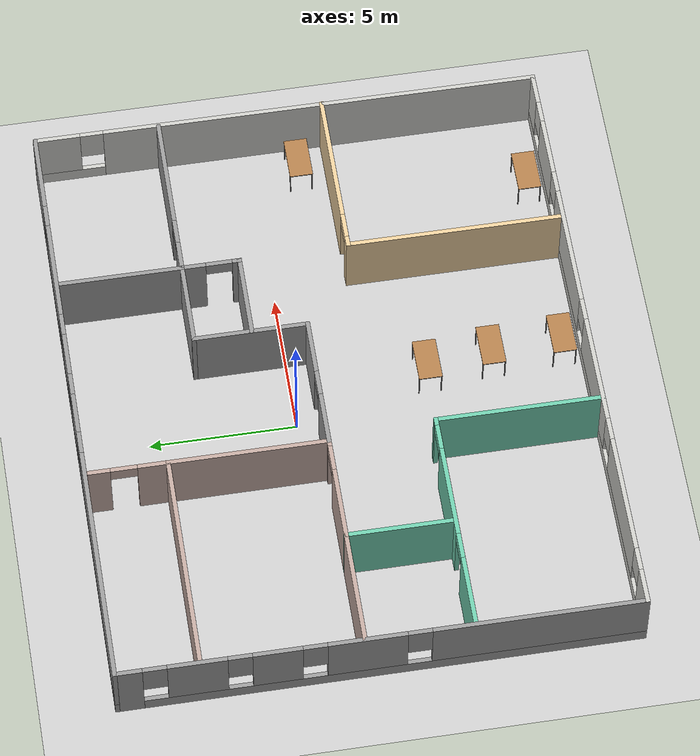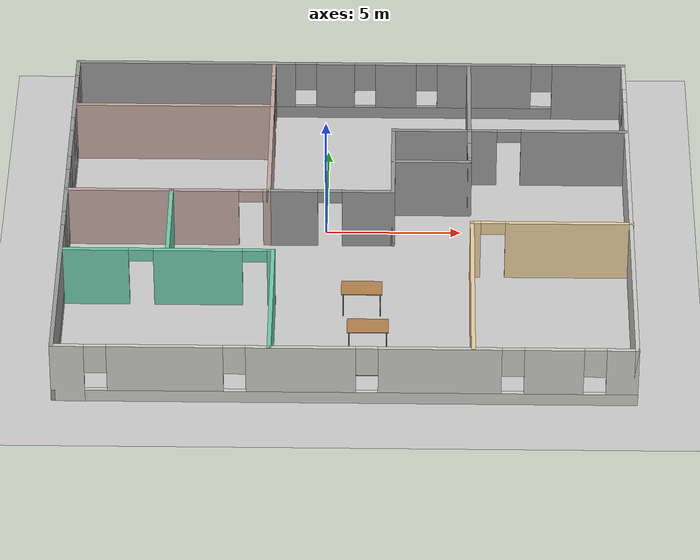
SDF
<sdf version="1.6">
 <world name="default">
  <model name="ground_plane">
   <static>1</static>
   <link name="link">
    <collision name="collision">
     <geometry><plane><normal>0 0 1</normal><size>100 100</size></plane></geometry>
     <surface>
      <contact><collide_bitmask>65535</collide_bitmask></contact>
      <friction><ode><mu>100</mu><mu2>50</mu2></ode></friction>
     </surface>
    </collision>
    <visual name="visual">
     <cast_shadows>0</cast_shadows>
     <geometry><plane><normal>0 0 1</normal><size>100 100</size></plane></geometry>
     <material>
      <script><uri>file://media/materials/scripts/gazebo.material</uri><name>Gazebo/Grey</name></script>
     </material>
    </visual>
   </link>
  </model>
  <model name="Building">
   <pose>0.811073 -1.31925 0 0 -0 0</pose>
   <link name="Wall_1">
    <pose>-10.4348 0 0 0 0 -1.5708</pose>
    <visual name="Wall_1_Visual_0">
     <pose>-8.26713 0 1.25 0 -0 0</pose>
     <geometry><box><size>0.965742 0.15 2.5</size></box></geometry>
     <material>
      <script><uri>file://media/materials/scripts/gazebo.material</uri><name>Gazebo/Grey</name></script>
      <ambient>1 1 1 1</ambient>
     </material>
     <meta><layer>0</layer></meta>
    </visual>
    <collision name="Wall_1_Collision_0">
     <geometry><box><size>0.965742 0.15 2.5</size></box></geometry>
     <pose>-8.26713 0 1.25 0 -0 0</pose>
    </collision>
    <visual name="Wall_1_Visual_1">
     <pose>0.482871 0 0.25 0 -0 0</pose>
     <geometry><box><size>16.5343 0.15 0.5</size></box></geometry>
     <material>
      <script><uri>file://media/materials/scripts/gazebo.material</uri><name>Gazebo/Grey</name></script>
      <ambient>1 1 1 1</ambient>
     </material>
     <meta><layer>0</layer></meta>
    </visual>
    <collision name="Wall_1_Collision_1">
     <geometry><box><size>16.5343 0.15 0.5</size></box></geometry>
     <pose>0.482871 0 0.25 0 -0 0</pose>
    </collision>
    <visual name="Wall_1_Visual_2">
     <pose>-6.00096 0 1.5 0 -0 0</pose>
     <geometry><box><size>1.9666 0.15 2</size></box></geometry>
     <material>
      <script><uri>file://media/materials/scripts/gazebo.material</uri><name>Gazebo/Grey</name></script>
      <ambient>1 1 1 1</ambient>
     </material>
     <meta><layer>0</layer></meta>
    </visual>
    <collision name="Wall_1_Collision_2">
     <geometry><box><size>1.9666 0.15 2</size></box></geometry>
     <pose>-6.00096 0 1.5 0 -0 0</pose>
    </collision>
    <visual name="Wall_1_Visual_3">
     <pose>-3.3971 0 1.5 0 -0 0</pose>
     <geometry><box><size>1.64112 0.15 2</size></box></geometry>
     <material>
      <script><uri>file://media/materials/scripts/gazebo.material</uri><name>Gazebo/Grey</name></script>
      <ambient>1 1 1 1</ambient>
     </material>
     <meta><layer>0</layer></meta>
    </visual>
    <collision name="Wall_1_Collision_3">
     <geometry><box><size>1.64112 0.15 2</size></box></geometry>
     <pose>-3.3971 0 1.5 0 -0 0</pose>
    </collision>
    <visual name="Wall_1_Visual_4">
     <pose>-0.467756 0 1.5 0 -0 0</pose>
     <geometry><box><size>2.61757 0.15 2</size></box></geometry>
     <material>
      <script><uri>file://media/materials/scripts/gazebo.material</uri><name>Gazebo/Grey</name></script>
      <ambient>1 1 1 1</ambient>
     </material>
     <meta><layer>0</layer></meta>
    </visual>
    <collision name="Wall_1_Collision_4">
     <geometry><box><size>2.61757 0.15 2</size></box></geometry>
     <pose>-0.467756 0 1.5 0 -0 0</pose>
    </collision>
    <visual name="Wall_1_Visual_5">
     <pose>5.19551 0 1.5 0 -0 0</pose>
     <geometry><box><size>7.10897 0.15 2</size></box></geometry>
     <material>
      <script><uri>file://media/materials/scripts/gazebo.material</uri><name>Gazebo/Grey</name></script>
      <ambient>1 1 1 1</ambient>
     </material>
     <meta><layer>0</layer></meta>
    </visual>
    <collision name="Wall_1_Collision_5">
     <geometry><box><size>7.10897 0.15 2</size></box></geometry>
     <pose>5.19551 0 1.5 0 -0 0</pose>
    </collision>
    <visual name="Wall_1_Visual_6">
     <pose>-7.38426 0 1.9 0 -0 0</pose>
     <geometry><box><size>0.8 0.15 1.2</size></box></geometry>
     <material>
      <script><uri>file://media/materials/scripts/gazebo.material</uri><name>Gazebo/Grey</name></script>
      <ambient>1 1 1 1</ambient>
     </material>
     <meta><layer>0</layer></meta>
    </visual>
    <collision name="Wall_1_Collision_6">
     <geometry><box><size>0.8 0.15 1.2</size></box></geometry>
     <pose>-7.38426 0 1.9 0 -0 0</pose>
    </collision>
    <visual name="Wall_1_Visual_7">
     <pose>-4.61766 0 1.9 0 -0 0</pose>
     <geometry><box><size>0.8 0.15 1.2</size></box></geometry>
     <material>
      <script><uri>file://media/materials/scripts/gazebo.material</uri><name>Gazebo/Grey</name></script>
      <ambient>1 1 1 1</ambient>
     </material>
     <meta><layer>0</layer></meta>
    </visual>
    <collision name="Wall_1_Collision_7">
     <geometry><box><size>0.8 0.15 1.2</size></box></geometry>
     <pose>-4.61766 0 1.9 0 -0 0</pose>
    </collision>
    <visual name="Wall_1_Visual_8">
     <pose>-2.17654 0 1.9 0 -0 0</pose>
     <geometry><box><size>0.8 0.15 1.2</size></box></geometry>
     <material>
      <script><uri>file://media/materials/scripts/gazebo.material</uri><name>Gazebo/Grey</name></script>
      <ambient>1 1 1 1</ambient>
     </material>
     <meta><layer>0</layer></meta>
    </visual>
    <collision name="Wall_1_Collision_8">
     <geometry><box><size>0.8 0.15 1.2</size></box></geometry>
     <pose>-2.17654 0 1.9 0 -0 0</pose>
    </collision>
    <visual name="Wall_1_Visual_9">
     <pose>1.24103 0 1.9 0 -0 0</pose>
     <geometry><box><size>0.8 0.15 1.2</size></box></geometry>
     <material>
      <script><uri>file://media/materials/scripts/gazebo.material</uri><name>Gazebo/Grey</name></script>
      <ambient>1 1 1 1</ambient>
     </material>
     <meta><layer>0</layer></meta>
    </visual>
    <collision name="Wall_1_Collision_9">
     <geometry><box><size>0.8 0.15 1.2</size></box></geometry>
     <pose>1.24103 0 1.9 0 -0 0</pose>
    </collision>
   </link>
   <link name="Wall_10">
    <collision name="Wall_10_Collision">
     <geometry><box><size>4 0.15 2.5</size></box></geometry>
     <pose>0 0 1.25 0 -0 0</pose>
    </collision>
    <visual name="Wall_10_Visual">
     <pose>0 0 1.25 0 -0 0</pose>
     <geometry><box><size>4 0.15 2.5</size></box></geometry>
     <material>
      <script><uri>file://media/materials/scripts/gazebo.material</uri><name>Gazebo/Grey</name></script>
      <ambient>0.760784 0.662745 0.627451 1</ambient>
     </material>
     <meta><layer>0</layer></meta>
    </visual>
    <pose>-8.46331 0.559038 0 0 -0 3.14159</pose>
   </link>
   <link name="Wall_12">
    <pose>-4.73832 0.559038 0 0 -0 0</pose>
    <visual name="Wall_12_Visual_0">
     <pose>-0.592728 0 1.25 0 -0 0</pose>
     <geometry><box><size>2.56454 0.15 2.5</size></box></geometry>
     <material>
      <script><uri>file://media/materials/scripts/gazebo.material</uri><name>Gazebo/Grey</name></script>
      <ambient>0.760784 0.662745 0.627451 1</ambient>
     </material>
     <meta><layer>0</layer></meta>
    </visual>
    <collision name="Wall_12_Collision_0">
     <geometry><box><size>2.56454 0.15 2.5</size></box></geometry>
     <pose>-0.592728 0 1.25 0 -0 0</pose>
    </collision>
    <visual name="Wall_12_Visual_1">
     <pose>1.73227 0 1.25 0 -0 0</pose>
     <geometry><box><size>0.285456 0.15 2.5</size></box></geometry>
     <material>
      <script><uri>file://media/materials/scripts/gazebo.material</uri><name>Gazebo/Grey</name></script>
      <ambient>0.760784 0.662745 0.627451 1</ambient>
     </material>
     <meta><layer>0</layer></meta>
    </visual>
    <collision name="Wall_12_Collision_1">
     <geometry><box><size>0.285456 0.15 2.5</size></box></geometry>
     <pose>1.73227 0 1.25 0 -0 0</pose>
    </collision>
    <visual name="Wall_12_Visual_2">
     <pose>1.13954 0 2.25 0 -0 0</pose>
     <geometry><box><size>0.9 0.15 0.5</size></box></geometry>
     <material>
      <script><uri>file://media/materials/scripts/gazebo.material</uri><name>Gazebo/Grey</name></script>
      <ambient>0.760784 0.662745 0.627451 1</ambient>
     </material>
     <meta><layer>0</layer></meta>
    </visual>
    <collision name="Wall_12_Collision_2">
     <geometry><box><size>0.9 0.15 0.5</size></box></geometry>
     <pose>1.13954 0 2.25 0 -0 0</pose>
    </collision>
   </link>
   <link name="Wall_13">
    <collision name="Wall_13_Collision">
     <geometry><box><size>5.5 0.15 2.5</size></box></geometry>
     <pose>0 0 1.25 0 -0 0</pose>
    </collision>
    <visual name="Wall_13_Visual">
     <pose>0 0 1.25 0 -0 0</pose>
     <geometry><box><size>5.5 0.15 2.5</size></box></geometry>
     <material>
      <script><uri>file://media/materials/scripts/gazebo.material</uri><name>Gazebo/Grey</name></script>
      <ambient>0.760784 0.662745 0.627451 1</ambient>
     </material>
     <meta><layer>0</layer></meta>
    </visual>
    <pose>-2.93835 3.23415 0 0 -0 1.57081</pose>
   </link>
   <link name="Wall_14">
    <collision name="Wall_14_Collision">
     <geometry><box><size>7.5 0.15 2.5</size></box></geometry>
     <pose>0 0 1.25 0 -0 0</pose>
    </collision>
    <visual name="Wall_14_Visual">
     <pose>0 0 1.25 0 -0 0</pose>
     <geometry><box><size>7.5 0.15 2.5</size></box></geometry>
     <material>
      <script><uri>file://media/materials/scripts/gazebo.material</uri><name>Gazebo/Grey</name></script>
      <ambient>0.760784 0.662745 0.627451 1</ambient>
     </material>
     <meta><layer>0</layer></meta>
    </visual>
    <pose>-6.61335 5.90915 0 0 0 -3.14156</pose>
   </link>
   <link name="Wall_16">
    <pose>-2.93838 7.21526 0 0 -0 1.5708</pose>
    <visual name="Wall_16_Visual_0">
     <pose>-0.831001 0 1.25 0 -0 0</pose>
     <geometry><box><size>1.1 0.15 2.5</size></box></geometry>
     <material>
      <script><uri>file://media/materials/scripts/gazebo.material</uri><name>Gazebo/Grey</name></script>
      <ambient>0.760784 0.662745 0.627451 1</ambient>
     </material>
     <meta><layer>0</layer></meta>
    </visual>
    <collision name="Wall_16_Collision_0">
     <geometry><box><size>1.1 0.15 2.5</size></box></geometry>
     <pose>-0.831001 0 1.25 0 -0 0</pose>
    </collision>
    <visual name="Wall_16_Visual_1">
     <pose>0.999999 0 1.25 0 -0 0</pose>
     <geometry><box><size>0.762002 0.15 2.5</size></box></geometry>
     <material>
      <script><uri>file://media/materials/scripts/gazebo.material</uri><name>Gazebo/Grey</name></script>
      <ambient>0.760784 0.662745 0.627451 1</ambient>
     </material>
     <meta><layer>0</layer></meta>
    </visual>
    <collision name="Wall_16_Collision_1">
     <geometry><box><size>0.762002 0.15 2.5</size></box></geometry>
     <pose>0.999999 0 1.25 0 -0 0</pose>
    </collision>
    <visual name="Wall_16_Visual_2">
     <pose>0.168998 0 2.25 0 -0 0</pose>
     <geometry><box><size>0.9 0.15 0.5</size></box></geometry>
     <material>
      <script><uri>file://media/materials/scripts/gazebo.material</uri><name>Gazebo/Grey</name></script>
      <ambient>0.760784 0.662745 0.627451 1</ambient>
     </material>
     <meta><layer>0</layer></meta>
    </visual>
    <collision name="Wall_16_Collision_2">
     <geometry><box><size>0.9 0.15 0.5</size></box></geometry>
     <pose>0.168998 0 2.25 0 -0 0</pose>
    </collision>
   </link>
   <link name="Wall_18">
    <collision name="Wall_18_Collision">
     <geometry><box><size>7.5 0.15 2.5</size></box></geometry>
     <pose>0 0 1.25 0 -0 0</pose>
    </collision>
    <visual name="Wall_18_Visual">
     <pose>0 0 1.25 0 -0 0</pose>
     <geometry><box><size>7.5 0.15 2.5</size></box></geometry>
     <material>
      <script><uri>file://media/materials/scripts/gazebo.material</uri><name>Gazebo/Grey</name></script>
      <ambient>0.921569 0.807843 0.615686 1</ambient>
     </material>
     <meta><layer>0</layer></meta>
    </visual>
    <pose>4.58481 -4.95144 0 0 -0 1.5708</pose>
   </link>
   <link name="Wall_19">
    <pose>7.50981 -1.27643 0 0 -0 0</pose>
    <visual name="Wall_19_Visual_0">
     <pose>-2.8039 0 1.25 0 -0 0</pose>
     <geometry><box><size>0.39219 0.15 2.5</size></box></geometry>
     <material>
      <script><uri>file://media/materials/scripts/gazebo.material</uri><name>Gazebo/Grey</name></script>
      <ambient>0.921569 0.807843 0.615686 1</ambient>
     </material>
     <meta><layer>0</layer></meta>
    </visual>
    <collision name="Wall_19_Collision_0">
     <geometry><box><size>0.39219 0.15 2.5</size></box></geometry>
     <pose>-2.8039 0 1.25 0 -0 0</pose>
    </collision>
    <visual name="Wall_19_Visual_1">
     <pose>0.646095 0 1.25 0 -0 0</pose>
     <geometry><box><size>4.70781 0.15 2.5</size></box></geometry>
     <material>
      <script><uri>file://media/materials/scripts/gazebo.material</uri><name>Gazebo/Grey</name></script>
      <ambient>0.921569 0.807843 0.615686 1</ambient>
     </material>
     <meta><layer>0</layer></meta>
    </visual>
    <collision name="Wall_19_Collision_1">
     <geometry><box><size>4.70781 0.15 2.5</size></box></geometry>
     <pose>0.646095 0 1.25 0 -0 0</pose>
    </collision>
    <visual name="Wall_19_Visual_2">
     <pose>-2.15781 0 2.25 0 -0 0</pose>
     <geometry><box><size>0.9 0.15 0.5</size></box></geometry>
     <material>
      <script><uri>file://media/materials/scripts/gazebo.material</uri><name>Gazebo/Grey</name></script>
      <ambient>0.921569 0.807843 0.615686 1</ambient>
     </material>
     <meta><layer>0</layer></meta>
    </visual>
    <collision name="Wall_19_Collision_2">
     <geometry><box><size>0.9 0.15 0.5</size></box></geometry>
     <pose>-2.15781 0 2.25 0 -0 0</pose>
    </collision>
   </link>
   <link name="Wall_2">
    <pose>-0.009806 -8.675 0 0 -0 0</pose>
    <visual name="Wall_2_Visual_0">
     <pose>-9.88903 0 1.25 0 -0 0</pose>
     <geometry><box><size>1.22195 0.15 2.5</size></box></geometry>
     <material>
      <script><uri>file://media/materials/scripts/gazebo.material</uri><name>Gazebo/CeilingTiled</name></script>
      <ambient>1 1 1 1</ambient>
     </material>
     <meta><layer>0</layer></meta>
    </visual>
    <collision name="Wall_2_Collision_0">
     <geometry><box><size>1.22195 0.15 2.5</size></box></geometry>
     <pose>-9.88903 0 1.25 0 -0 0</pose>
    </collision>
    <visual name="Wall_2_Visual_1">
     <pose>0.610973 0 0.25 0 -0 0</pose>
     <geometry><box><size>19.7781 0.15 0.5</size></box></geometry>
     <material>
      <script><uri>file://media/materials/scripts/gazebo.material</uri><name>Gazebo/CeilingTiled</name></script>
      <ambient>1 1 1 1</ambient>
     </material>
     <meta><layer>0</layer></meta>
    </visual>
    <collision name="Wall_2_Collision_1">
     <geometry><box><size>19.7781 0.15 0.5</size></box></geometry>
     <pose>0.610973 0 0.25 0 -0 0</pose>
    </collision>
    <visual name="Wall_2_Visual_2">
     <pose>-6.39625 0 1.5 0 -0 0</pose>
     <geometry><box><size>4.16361 0.15 2</size></box></geometry>
     <material>
      <script><uri>file://media/materials/scripts/gazebo.material</uri><name>Gazebo/CeilingTiled</name></script>
      <ambient>1 1 1 1</ambient>
     </material>
     <meta><layer>0</layer></meta>
    </visual>
    <collision name="Wall_2_Collision_2">
     <geometry><box><size>4.16361 0.15 2</size></box></geometry>
     <pose>-6.39625 0 1.5 0 -0 0</pose>
    </collision>
    <visual name="Wall_2_Visual_3">
     <pose>-1.5547 0 1.5 0 -0 0</pose>
     <geometry><box><size>3.9195 0.15 2</size></box></geometry>
     <material>
      <script><uri>file://media/materials/scripts/gazebo.material</uri><name>Gazebo/CeilingTiled</name></script>
      <ambient>1 1 1 1</ambient>
     </material>
     <meta><layer>0</layer></meta>
    </visual>
    <collision name="Wall_2_Collision_3">
     <geometry><box><size>3.9195 0.15 2</size></box></geometry>
     <pose>-1.5547 0 1.5 0 -0 0</pose>
    </collision>
    <visual name="Wall_2_Visual_4">
     <pose>3.40891 0 1.5 0 -0 0</pose>
     <geometry><box><size>4.40772 0.15 2</size></box></geometry>
     <material>
      <script><uri>file://media/materials/scripts/gazebo.material</uri><name>Gazebo/CeilingTiled</name></script>
      <ambient>1 1 1 1</ambient>
     </material>
     <meta><layer>0</layer></meta>
    </visual>
    <collision name="Wall_2_Collision_4">
     <geometry><box><size>4.40772 0.15 2</size></box></geometry>
     <pose>3.40891 0 1.5 0 -0 0</pose>
    </collision>
    <visual name="Wall_2_Visual_5">
     <pose>7.47744 0 1.5 0 -0 0</pose>
     <geometry><box><size>2.12934 0.15 2</size></box></geometry>
     <material>
      <script><uri>file://media/materials/scripts/gazebo.material</uri><name>Gazebo/CeilingTiled</name></script>
      <ambient>1 1 1 1</ambient>
     </material>
     <meta><layer>0</layer></meta>
    </visual>
    <collision name="Wall_2_Collision_5">
     <geometry><box><size>2.12934 0.15 2</size></box></geometry>
     <pose>7.47744 0 1.5 0 -0 0</pose>
    </collision>
    <visual name="Wall_2_Visual_6">
     <pose>9.92106 0 1.5 0 -0 0</pose>
     <geometry><box><size>1.15789 0.15 2</size></box></geometry>
     <material>
      <script><uri>file://media/materials/scripts/gazebo.material</uri><name>Gazebo/CeilingTiled</name></script>
      <ambient>1 1 1 1</ambient>
     </material>
     <meta><layer>0</layer></meta>
    </visual>
    <collision name="Wall_2_Collision_6">
     <geometry><box><size>1.15789 0.15 2</size></box></geometry>
     <pose>9.92106 0 1.5 0 -0 0</pose>
    </collision>
    <visual name="Wall_2_Visual_7">
     <pose>-8.87805 0 1.9 0 -0 0</pose>
     <geometry><box><size>0.8 0.15 1.2</size></box></geometry>
     <material>
      <script><uri>file://media/materials/scripts/gazebo.material</uri><name>Gazebo/CeilingTiled</name></script>
      <ambient>1 1 1 1</ambient>
     </material>
     <meta><layer>0</layer></meta>
    </visual>
    <collision name="Wall_2_Collision_7">
     <geometry><box><size>0.8 0.15 1.2</size></box></geometry>
     <pose>-8.87805 0 1.9 0 -0 0</pose>
    </collision>
    <visual name="Wall_2_Visual_8">
     <pose>-3.91445 0 1.9 0 -0 0</pose>
     <geometry><box><size>0.8 0.15 1.2</size></box></geometry>
     <material>
      <script><uri>file://media/materials/scripts/gazebo.material</uri><name>Gazebo/CeilingTiled</name></script>
      <ambient>1 1 1 1</ambient>
     </material>
     <meta><layer>0</layer></meta>
    </visual>
    <collision name="Wall_2_Collision_8">
     <geometry><box><size>0.8 0.15 1.2</size></box></geometry>
     <pose>-3.91445 0 1.9 0 -0 0</pose>
    </collision>
    <visual name="Wall_2_Visual_9">
     <pose>0.805049 0 1.9 0 -0 0</pose>
     <geometry><box><size>0.8 0.15 1.2</size></box></geometry>
     <material>
      <script><uri>file://media/materials/scripts/gazebo.material</uri><name>Gazebo/CeilingTiled</name></script>
      <ambient>1 1 1 1</ambient>
     </material>
     <meta><layer>0</layer></meta>
    </visual>
    <collision name="Wall_2_Collision_9">
     <geometry><box><size>0.8 0.15 1.2</size></box></geometry>
     <pose>0.805049 0 1.9 0 -0 0</pose>
    </collision>
    <visual name="Wall_2_Visual_10">
     <pose>6.01277 0 1.9 0 -0 0</pose>
     <geometry><box><size>0.8 0.15 1.2</size></box></geometry>
     <material>
      <script><uri>file://media/materials/scripts/gazebo.material</uri><name>Gazebo/CeilingTiled</name></script>
      <ambient>1 1 1 1</ambient>
     </material>
     <meta><layer>0</layer></meta>
    </visual>
    <collision name="Wall_2_Collision_10">
     <geometry><box><size>0.8 0.15 1.2</size></box></geometry>
     <pose>6.01277 0 1.9 0 -0 0</pose>
    </collision>
    <visual name="Wall_2_Visual_11">
     <pose>8.94211 0 1.9 0 -0 0</pose>
     <geometry><box><size>0.8 0.15 1.2</size></box></geometry>
     <material>
      <script><uri>file://media/materials/scripts/gazebo.material</uri><name>Gazebo/CeilingTiled</name></script>
      <ambient>1 1 1 1</ambient>
     </material>
     <meta><layer>0</layer></meta>
    </visual>
    <collision name="Wall_2_Collision_11">
     <geometry><box><size>0.8 0.15 1.2</size></box></geometry>
     <pose>8.94211 0 1.9 0 -0 0</pose>
    </collision>
   </link>
   <link name="Wall_21">
    <pose>-0.638315 0.559038 0 0 -0 0</pose>
    <visual name="Wall_21_Visual_0">
     <pose>-1.42806 0 1.25 0 -0 0</pose>
     <geometry><box><size>1.89389 0.15 2.5</size></box></geometry>
     <material>
      <script><uri>file://media/materials/scripts/gazebo.material</uri><name>Gazebo/Grey</name></script>
      <ambient>1 1 1 1</ambient>
     </material>
     <meta><layer>0</layer></meta>
    </visual>
    <collision name="Wall_21_Collision_0">
     <geometry><box><size>1.89389 0.15 2.5</size></box></geometry>
     <pose>-1.42806 0 1.25 0 -0 0</pose>
    </collision>
    <visual name="Wall_21_Visual_1">
     <pose>1.39694 0 1.25 0 -0 0</pose>
     <geometry><box><size>1.95611 0.15 2.5</size></box></geometry>
     <material>
      <script><uri>file://media/materials/scripts/gazebo.material</uri><name>Gazebo/Grey</name></script>
      <ambient>1 1 1 1</ambient>
     </material>
     <meta><layer>0</layer></meta>
    </visual>
    <collision name="Wall_21_Collision_1">
     <geometry><box><size>1.95611 0.15 2.5</size></box></geometry>
     <pose>1.39694 0 1.25 0 -0 0</pose>
    </collision>
    <visual name="Wall_21_Visual_2">
     <pose>-0.031114 0 2.25 0 -0 0</pose>
     <geometry><box><size>0.9 0.15 0.5</size></box></geometry>
     <material>
      <script><uri>file://media/materials/scripts/gazebo.material</uri><name>Gazebo/Grey</name></script>
      <ambient>1 1 1 1</ambient>
     </material>
     <meta><layer>0</layer></meta>
    </visual>
    <collision name="Wall_21_Collision_2">
     <geometry><box><size>0.9 0.15 0.5</size></box></geometry>
     <pose>-0.031114 0 2.25 0 -0 0</pose>
    </collision>
   </link>
   <link name="Wall_22">
    <collision name="Wall_22_Collision">
     <geometry><box><size>4 0.15 2.5</size></box></geometry>
     <pose>0 0 1.25 0 -0 0</pose>
    </collision>
    <visual name="Wall_22_Visual">
     <pose>0 0 1.25 0 -0 0</pose>
     <geometry><box><size>4 0.15 2.5</size></box></geometry>
     <material>
      <script><uri>file://media/materials/scripts/gazebo.material</uri><name>Gazebo/Grey</name></script>
      <ambient>1 1 1 1</ambient>
     </material>
     <meta><layer>0</layer></meta>
    </visual>
    <pose>1.66169 2.48404 0 0 -0 1.5708</pose>
   </link>
   <link name="Wall_23">
    <collision name="Wall_23_Collision">
     <geometry><box><size>3 0.15 2.5</size></box></geometry>
     <pose>0 0 1.25 0 -0 0</pose>
    </collision>
    <visual name="Wall_23_Visual">
     <pose>0 0 1.25 0 -0 0</pose>
     <geometry><box><size>3 0.15 2.5</size></box></geometry>
     <material>
      <script><uri>file://media/materials/scripts/gazebo.material</uri><name>Gazebo/Grey</name></script>
      <ambient>1 1 1 1</ambient>
     </material>
     <meta><layer>0</layer></meta>
    </visual>
    <pose>3.08665 4.40915 0 0 -0 7.8e-05</pose>
   </link>
   <link name="Wall_24">
    <collision name="Wall_24_Collision">
     <geometry><box><size>4.268 0.15 2.5</size></box></geometry>
     <pose>0 0 1.25 0 -0 0</pose>
    </collision>
    <visual name="Wall_24_Visual">
     <pose>0 0 1.25 0 -0 0</pose>
     <geometry><box><size>4.268 0.15 2.5</size></box></geometry>
     <material>
      <script><uri>file://media/materials/scripts/gazebo.material</uri><name>Gazebo/Grey</name></script>
      <ambient>0 0 0 1</ambient>
     </material>
     <meta><layer>0</layer></meta>
    </visual>
    <pose>4.51162 6.46826 0 0 -0 1.5708</pose>
   </link>
   <link name="Wall_29">
    <collision name="Wall_29_Collision">
     <geometry><box><size>3 0.15 2.5</size></box></geometry>
     <pose>0 0 1.25 0 -0 0</pose>
    </collision>
    <visual name="Wall_29_Visual">
     <pose>0 0 1.25 0 -0 0</pose>
     <geometry><box><size>3 0.15 2.5</size></box></geometry>
     <material>
      <script><uri>file://media/materials/scripts/gazebo.material</uri><name>Gazebo/Grey</name></script>
      <ambient>1 1 1 1</ambient>
     </material>
     <meta><layer>0</layer></meta>
    </visual>
    <pose>3.09 2.4505 0 0 -0 0</pose>
   </link>
   <link name="Wall_3">
    <pose>10.4152 0 0 0 -0 1.5708</pose>
    <visual name="Wall_3_Visual_0">
     <pose>-1.20835 0 1.25 0 -0 0</pose>
     <geometry><box><size>15.0833 0.15 2.5</size></box></geometry>
     <material>
      <script><uri>file://media/materials/scripts/gazebo.material</uri><name>Gazebo/CeilingTiled</name></script>
      <ambient>1 1 1 1</ambient>
     </material>
     <meta><layer>0</layer></meta>
    </visual>
    <collision name="Wall_3_Collision_0">
     <geometry><box><size>15.0833 0.15 2.5</size></box></geometry>
     <pose>-1.20835 0 1.25 0 -0 0</pose>
    </collision>
    <visual name="Wall_3_Visual_1">
     <pose>7.54165 0 0.25 0 -0 0</pose>
     <geometry><box><size>2.41671 0.15 0.5</size></box></geometry>
     <material>
      <script><uri>file://media/materials/scripts/gazebo.material</uri><name>Gazebo/CeilingTiled</name></script>
      <ambient>1 1 1 1</ambient>
     </material>
     <meta><layer>0</layer></meta>
    </visual>
    <collision name="Wall_3_Collision_1">
     <geometry><box><size>2.41671 0.15 0.5</size></box></geometry>
     <pose>7.54165 0 0.25 0 -0 0</pose>
    </collision>
    <visual name="Wall_3_Visual_2">
     <pose>7.94165 0 1.5 0 -0 0</pose>
     <geometry><box><size>1.61671 0.15 2</size></box></geometry>
     <material>
      <script><uri>file://media/materials/scripts/gazebo.material</uri><name>Gazebo/CeilingTiled</name></script>
      <ambient>1 1 1 1</ambient>
     </material>
     <meta><layer>0</layer></meta>
    </visual>
    <collision name="Wall_3_Collision_2">
     <geometry><box><size>1.61671 0.15 2</size></box></geometry>
     <pose>7.94165 0 1.5 0 -0 0</pose>
    </collision>
    <visual name="Wall_3_Visual_3">
     <pose>6.73329 0 1.9 0 -0 0</pose>
     <geometry><box><size>0.8 0.15 1.2</size></box></geometry>
     <material>
      <script><uri>file://media/materials/scripts/gazebo.material</uri><name>Gazebo/CeilingTiled</name></script>
      <ambient>1 1 1 1</ambient>
     </material>
     <meta><layer>0</layer></meta>
    </visual>
    <collision name="Wall_3_Collision_3">
     <geometry><box><size>0.8 0.15 1.2</size></box></geometry>
     <pose>6.73329 0 1.9 0 -0 0</pose>
    </collision>
   </link>
   <link name="Wall_30">
    <pose>4.51331 3.42988 0 0 -0 1.57252</pose>
    <visual name="Wall_30_Visual_0">
     <pose>-0.890603 0 1.25 0 -0 0</pose>
     <geometry><box><size>0.327334 0.15 2.5</size></box></geometry>
     <material>
      <script><uri>file://media/materials/scripts/gazebo.material</uri><name>Gazebo/Grey</name></script>
      <ambient>1 1 1 1</ambient>
     </material>
     <meta><layer>0</layer></meta>
    </visual>
    <collision name="Wall_30_Collision_0">
     <geometry><box><size>0.327334 0.15 2.5</size></box></geometry>
     <pose>-0.890603 0 1.25 0 -0 0</pose>
    </collision>
    <visual name="Wall_30_Visual_1">
     <pose>0.613667 0 1.25 0 -0 0</pose>
     <geometry><box><size>0.881207 0.15 2.5</size></box></geometry>
     <material>
      <script><uri>file://media/materials/scripts/gazebo.material</uri><name>Gazebo/Grey</name></script>
      <ambient>1 1 1 1</ambient>
     </material>
     <meta><layer>0</layer></meta>
    </visual>
    <collision name="Wall_30_Collision_1">
     <geometry><box><size>0.881207 0.15 2.5</size></box></geometry>
     <pose>0.613667 0 1.25 0 -0 0</pose>
    </collision>
    <visual name="Wall_30_Visual_2">
     <pose>-0.276937 0 2.25 0 -0 0</pose>
     <geometry><box><size>0.9 0.15 0.5</size></box></geometry>
     <material>
      <script><uri>file://media/materials/scripts/gazebo.material</uri><name>Gazebo/Grey</name></script>
      <ambient>1 1 1 1</ambient>
     </material>
     <meta><layer>0</layer></meta>
    </visual>
    <collision name="Wall_30_Collision_2">
     <geometry><box><size>0.9 0.15 0.5</size></box></geometry>
     <pose>-0.276937 0 2.25 0 -0 0</pose>
    </collision>
   </link>
   <link name="Wall_32">
    <pose>7.43665 4.40915 0 0 0 -3.8e-05</pose>
    <visual name="Wall_32_Visual_0">
     <pose>-2.44184 0 1.25 0 -0 0</pose>
     <geometry><box><size>1.11631 0.15 2.5</size></box></geometry>
     <material>
      <script><uri>file://media/materials/scripts/gazebo.material</uri><name>Gazebo/Grey</name></script>
      <ambient>0 0 0 1</ambient>
     </material>
     <meta><layer>0</layer></meta>
    </visual>
    <collision name="Wall_32_Collision_0">
     <geometry><box><size>1.11631 0.15 2.5</size></box></geometry>
     <pose>-2.44184 0 1.25 0 -0 0</pose>
    </collision>
    <visual name="Wall_32_Visual_1">
     <pose>1.00815 0 1.25 0 -0 0</pose>
     <geometry><box><size>3.98369 0.15 2.5</size></box></geometry>
     <material>
      <script><uri>file://media/materials/scripts/gazebo.material</uri><name>Gazebo/Grey</name></script>
      <ambient>0 0 0 1</ambient>
     </material>
     <meta><layer>0</layer></meta>
    </visual>
    <collision name="Wall_32_Collision_1">
     <geometry><box><size>3.98369 0.15 2.5</size></box></geometry>
     <pose>1.00815 0 1.25 0 -0 0</pose>
    </collision>
    <visual name="Wall_32_Visual_2">
     <pose>-1.43369 0 2.25 0 -0 0</pose>
     <geometry><box><size>0.9 0.15 0.5</size></box></geometry>
     <material>
      <script><uri>file://media/materials/scripts/gazebo.material</uri><name>Gazebo/Grey</name></script>
      <ambient>0 0 0 1</ambient>
     </material>
     <meta><layer>0</layer></meta>
    </visual>
    <collision name="Wall_32_Collision_2">
     <geometry><box><size>0.9 0.15 0.5</size></box></geometry>
     <pose>-1.43369 0 2.25 0 -0 0</pose>
    </collision>
   </link>
   <link name="Wall_4">
    <pose>-0.009806 8.675 0 0 -0 3.14159</pose>
    <visual name="Wall_4_Visual_0">
     <pose>-9.10735 0 1.25 0 -0 0</pose>
     <geometry><box><size>2.7853 0.15 2.5</size></box></geometry>
     <material>
      <script><uri>file://media/materials/scripts/gazebo.material</uri><name>Gazebo/Grey</name></script>
      <ambient>1 1 1 1</ambient>
     </material>
     <meta><layer>0</layer></meta>
    </visual>
    <collision name="Wall_4_Collision_0">
     <geometry><box><size>2.7853 0.15 2.5</size></box></geometry>
     <pose>-9.10735 0 1.25 0 -0 0</pose>
    </collision>
    <visual name="Wall_4_Visual_1">
     <pose>1.39265 0 0.25 0 -0 0</pose>
     <geometry><box><size>18.2147 0.15 0.5</size></box></geometry>
     <material>
      <script><uri>file://media/materials/scripts/gazebo.material</uri><name>Gazebo/Grey</name></script>
      <ambient>1 1 1 1</ambient>
     </material>
     <meta><layer>0</layer></meta>
    </visual>
    <collision name="Wall_4_Collision_1">
     <geometry><box><size>18.2147 0.15 0.5</size></box></geometry>
     <pose>1.39265 0 0.25 0 -0 0</pose>
    </collision>
    <visual name="Wall_4_Visual_2">
     <pose>-5.11769 0 1.5 0 -0 0</pose>
     <geometry><box><size>3.59401 0.15 2</size></box></geometry>
     <material>
      <script><uri>file://media/materials/scripts/gazebo.material</uri><name>Gazebo/Grey</name></script>
      <ambient>1 1 1 1</ambient>
     </material>
     <meta><layer>0</layer></meta>
    </visual>
    <collision name="Wall_4_Collision_2">
     <geometry><box><size>3.59401 0.15 2</size></box></geometry>
     <pose>-5.11769 0 1.5 0 -0 0</pose>
    </collision>
    <visual name="Wall_4_Visual_3">
     <pose>-1.74081 0 1.5 0 -0 0</pose>
     <geometry><box><size>1.55975 0.15 2</size></box></geometry>
     <material>
      <script><uri>file://media/materials/scripts/gazebo.material</uri><name>Gazebo/Grey</name></script>
      <ambient>1 1 1 1</ambient>
     </material>
     <meta><layer>0</layer></meta>
    </visual>
    <collision name="Wall_4_Collision_3">
     <geometry><box><size>1.55975 0.15 2</size></box></geometry>
     <pose>-1.74081 0 1.5 0 -0 0</pose>
    </collision>
    <visual name="Wall_4_Visual_4">
     <pose>0.578252 0 1.5 0 -0 0</pose>
     <geometry><box><size>1.47838 0.15 2</size></box></geometry>
     <material>
      <script><uri>file://media/materials/scripts/gazebo.material</uri><name>Gazebo/Grey</name></script>
      <ambient>1 1 1 1</ambient>
     </material>
     <meta><layer>0</layer></meta>
    </visual>
    <collision name="Wall_4_Collision_4">
     <geometry><box><size>1.47838 0.15 2</size></box></geometry>
     <pose>0.578252 0 1.5 0 -0 0</pose>
    </collision>
    <visual name="Wall_4_Visual_5">
     <pose>6.30872 0 1.5 0 -0 0</pose>
     <geometry><box><size>8.38256 0.15 2</size></box></geometry>
     <material>
      <script><uri>file://media/materials/scripts/gazebo.material</uri><name>Gazebo/Grey</name></script>
      <ambient>1 1 1 1</ambient>
     </material>
     <meta><layer>0</layer></meta>
    </visual>
    <collision name="Wall_4_Collision_5">
     <geometry><box><size>8.38256 0.15 2</size></box></geometry>
     <pose>6.30872 0 1.5 0 -0 0</pose>
    </collision>
    <visual name="Wall_4_Visual_6">
     <pose>-7.3147 0 1.9 0 -0 0</pose>
     <geometry><box><size>0.8 0.15 1.2</size></box></geometry>
     <material>
      <script><uri>file://media/materials/scripts/gazebo.material</uri><name>Gazebo/Grey</name></script>
      <ambient>1 1 1 1</ambient>
     </material>
     <meta><layer>0</layer></meta>
    </visual>
    <collision name="Wall_4_Collision_6">
     <geometry><box><size>0.8 0.15 1.2</size></box></geometry>
     <pose>-7.3147 0 1.9 0 -0 0</pose>
    </collision>
    <visual name="Wall_4_Visual_7">
     <pose>-2.92069 0 1.9 0 -0 0</pose>
     <geometry><box><size>0.8 0.15 1.2</size></box></geometry>
     <material>
      <script><uri>file://media/materials/scripts/gazebo.material</uri><name>Gazebo/Grey</name></script>
      <ambient>1 1 1 1</ambient>
     </material>
     <meta><layer>0</layer></meta>
    </visual>
    <collision name="Wall_4_Collision_7">
     <geometry><box><size>0.8 0.15 1.2</size></box></geometry>
     <pose>-2.92069 0 1.9 0 -0 0</pose>
    </collision>
    <visual name="Wall_4_Visual_8">
     <pose>-0.560937 0 1.9 0 -0 0</pose>
     <geometry><box><size>0.8 0.15 1.2</size></box></geometry>
     <material>
      <script><uri>file://media/materials/scripts/gazebo.material</uri><name>Gazebo/Grey</name></script>
      <ambient>1 1 1 1</ambient>
     </material>
     <meta><layer>0</layer></meta>
    </visual>
    <collision name="Wall_4_Collision_8">
     <geometry><box><size>0.8 0.15 1.2</size></box></geometry>
     <pose>-0.560937 0 1.9 0 -0 0</pose>
    </collision>
    <visual name="Wall_4_Visual_9">
     <pose>1.71744 0 1.9 0 -0 0</pose>
     <geometry><box><size>0.8 0.15 1.2</size></box></geometry>
     <material>
      <script><uri>file://media/materials/scripts/gazebo.material</uri><name>Gazebo/Grey</name></script>
      <ambient>1 1 1 1</ambient>
     </material>
     <meta><layer>0</layer></meta>
    </visual>
    <collision name="Wall_4_Collision_9">
     <geometry><box><size>0.8 0.15 1.2</size></box></geometry>
     <pose>1.71744 0 1.9 0 -0 0</pose>
    </collision>
   </link>
   <link name="Wall_6">
    <collision name="Wall_6_Collision">
     <geometry><box><size>5.75 0.15 2.5</size></box></geometry>
     <pose>0 0 1.25 0 -0 0</pose>
    </collision>
    <visual name="Wall_6_Visual">
     <pose>0 0 1.25 0 -0 0</pose>
     <geometry><box><size>5.75 0.15 2.5</size></box></geometry>
     <material>
      <script><uri>file://media/materials/scripts/gazebo.material</uri><name>Gazebo/Grey</name></script>
      <ambient>0.435294 0.796078 0.67451 1</ambient>
     </material>
     <meta><layer>0</layer></meta>
    </visual>
    <pose>-2.68597 -5.85697 0 0 -0 1.5708</pose>
   </link>
   <link name="Wall_7">
    <pose>-6.48597 -3.05697 0 0 -0 3.14159</pose>
    <visual name="Wall_7_Visual_0">
     <pose>-3.72816 0 1.25 0 -0 0</pose>
     <geometry><box><size>0.293686 0.15 2.5</size></box></geometry>
     <material>
      <script><uri>file://media/materials/scripts/gazebo.material</uri><name>Gazebo/Grey</name></script>
      <ambient>0.435294 0.796078 0.67451 1</ambient>
     </material>
     <meta><layer>0</layer></meta>
    </visual>
    <collision name="Wall_7_Collision_0">
     <geometry><box><size>0.293686 0.15 2.5</size></box></geometry>
     <pose>-3.72816 0 1.25 0 -0 0</pose>
    </collision>
    <visual name="Wall_7_Visual_1">
     <pose>-1.05636 0 1.25 0 -0 0</pose>
     <geometry><box><size>3.2499 0.15 2.5</size></box></geometry>
     <material>
      <script><uri>file://media/materials/scripts/gazebo.material</uri><name>Gazebo/Grey</name></script>
      <ambient>0.435294 0.796078 0.67451 1</ambient>
     </material>
     <meta><layer>0</layer></meta>
    </visual>
    <collision name="Wall_7_Collision_1">
     <geometry><box><size>3.2499 0.15 2.5</size></box></geometry>
     <pose>-1.05636 0 1.25 0 -0 0</pose>
    </collision>
    <visual name="Wall_7_Visual_2">
     <pose>2.67179 0 1.25 0 -0 0</pose>
     <geometry><box><size>2.40641 0.15 2.5</size></box></geometry>
     <material>
      <script><uri>file://media/materials/scripts/gazebo.material</uri><name>Gazebo/Grey</name></script>
      <ambient>0.435294 0.796078 0.67451 1</ambient>
     </material>
     <meta><layer>0</layer></meta>
    </visual>
    <collision name="Wall_7_Collision_2">
     <geometry><box><size>2.40641 0.15 2.5</size></box></geometry>
     <pose>2.67179 0 1.25 0 -0 0</pose>
    </collision>
    <visual name="Wall_7_Visual_3">
     <pose>-3.13131 0 2.25 0 -0 0</pose>
     <geometry><box><size>0.9 0.15 0.5</size></box></geometry>
     <material>
      <script><uri>file://media/materials/scripts/gazebo.material</uri><name>Gazebo/Grey</name></script>
      <ambient>0.435294 0.796078 0.67451 1</ambient>
     </material>
     <meta><layer>0</layer></meta>
    </visual>
    <collision name="Wall_7_Collision_3">
     <geometry><box><size>0.9 0.15 0.5</size></box></geometry>
     <pose>-3.13131 0 2.25 0 -0 0</pose>
    </collision>
    <visual name="Wall_7_Visual_4">
     <pose>1.01859 0 2.25 0 -0 0</pose>
     <geometry><box><size>0.9 0.15 0.5</size></box></geometry>
     <material>
      <script><uri>file://media/materials/scripts/gazebo.material</uri><name>Gazebo/Grey</name></script>
      <ambient>0.435294 0.796078 0.67451 1</ambient>
     </material>
     <meta><layer>0</layer></meta>
    </visual>
    <collision name="Wall_7_Collision_4">
     <geometry><box><size>0.9 0.15 0.5</size></box></geometry>
     <pose>1.01859 0 2.25 0 -0 0</pose>
    </collision>
   </link>
   <link name="Wall_9">
    <collision name="Wall_9_Collision">
     <geometry><box><size>3.75 0.15 2.5</size></box></geometry>
     <pose>0 0 1.25 0 -0 0</pose>
    </collision>
    <visual name="Wall_9_Visual">
     <pose>0 0 1.25 0 -0 0</pose>
     <geometry><box><size>3.75 0.15 2.5</size></box></geometry>
     <material>
      <script><uri>file://media/materials/scripts/gazebo.material</uri><name>Gazebo/Grey</name></script>
      <ambient>0.435294 0.796078 0.67451 1</ambient>
     </material>
     <meta><layer>0</layer></meta>
    </visual>
    <pose>-6.53831 -1.24096 0 0 -0 1.5708</pose>
   </link>
   <static>1</static>
  </model>
  <model name="table">
   <static>1</static>
   <link name="link">
    <collision name="surface">
     <pose>0 0 1 0 -0 0</pose>
     <geometry><box><size>1.5 0.8 0.03</size></box></geometry>
     <surface><friction><ode><mu>0.6</mu><mu2>0.6</mu2></ode></friction></surface>
    </collision>
    <visual name="visual1">
     <pose>0 0 1 0 -0 0</pose>
     <geometry><box><size>1.5 0.8 0.03</size></box></geometry>
     <material>
      <script><uri>file://media/materials/scripts/gazebo.material</uri><name>Gazebo/Wood</name></script>
     </material>
    </visual>
    <collision name="front_left_leg">
     <pose>0.68 0.38 0.5 0 -0 0</pose>
     <geometry><cylinder><radius>0.02</radius><length>1</length></cylinder></geometry>
    </collision>
    <visual name="front_left_leg">
     <pose>0.68 0.38 0.5 0 -0 0</pose>
     <geometry><cylinder><radius>0.02</radius><length>1</length></cylinder></geometry>
     <material>
      <script><uri>file://media/materials/scripts/gazebo.material</uri><name>Gazebo/Grey</name></script>
     </material>
    </visual>
    <collision name="front_right_leg">
     <pose>0.68 -0.38 0.5 0 -0 0</pose>
     <geometry><cylinder><radius>0.02</radius><length>1</length></cylinder></geometry>
    </collision>
    <visual name="front_right_leg">
     <pose>0.68 -0.38 0.5 0 -0 0</pose>
     <geometry><cylinder><radius>0.02</radius><length>1</length></cylinder></geometry>
     <material>
      <script><uri>file://media/materials/scripts/gazebo.material</uri><name>Gazebo/Grey</name></script>
     </material>
    </visual>
    <collision name="back_right_leg">
     <pose>-0.68 -0.38 0.5 0 -0 0</pose>
     <geometry><cylinder><radius>0.02</radius><length>1</length></cylinder></geometry>
    </collision>
    <visual name="back_right_leg">
     <pose>-0.68 -0.38 0.5 0 -0 0</pose>
     <geometry><cylinder><radius>0.02</radius><length>1</length></cylinder></geometry>
     <material>
      <script><uri>file://media/materials/scripts/gazebo.material</uri><name>Gazebo/Grey</name></script>
     </material>
    </visual>
    <collision name="back_left_leg">
     <pose>-0.68 0.38 0.5 0 -0 0</pose>
     <geometry><cylinder><radius>0.02</radius><length>1</length></cylinder></geometry>
    </collision>
    <visual name="back_left_leg">
     <pose>-0.68 0.38 0.5 0 -0 0</pose>
     <geometry><cylinder><radius>0.02</radius><length>1</length></cylinder></geometry>
     <material>
      <script><uri>file://media/materials/scripts/gazebo.material</uri><name>Gazebo/Grey</name></script>
     </material>
    </visual>
   </link>
   <pose>1.70208 -9.32106 0 0 -0 0</pose>
  </model>
  <model name="table_0">
   <static>1</static>
   <link name="link">
    <collision name="surface">
     <pose>0 0 1 0 -0 0</pose>
     <geometry><box><size>1.5 0.8 0.03</size></box></geometry>
     <surface><friction><ode><mu>0.6</mu><mu2>0.6</mu2></ode></friction></surface>
    </collision>
    <visual name="visual1">
     <pose>0 0 1 0 -0 0</pose>
     <geometry><box><size>1.5 0.8 0.03</size></box></geometry>
     <material>
      <script><uri>file://media/materials/scripts/gazebo.material</uri><name>Gazebo/Wood</name></script>
     </material>
    </visual>
    <collision name="front_left_leg">
     <pose>0.68 0.38 0.5 0 -0 0</pose>
     <geometry><cylinder><radius>0.02</radius><length>1</length></cylinder></geometry>
    </collision>
    <visual name="front_left_leg">
     <pose>0.68 0.38 0.5 0 -0 0</pose>
     <geometry><cylinder><radius>0.02</radius><length>1</length></cylinder></geometry>
     <material>
      <script><uri>file://media/materials/scripts/gazebo.material</uri><name>Gazebo/Grey</name></script>
     </material>
    </visual>
    <collision name="front_right_leg">
     <pose>0.68 -0.38 0.5 0 -0 0</pose>
     <geometry><cylinder><radius>0.02</radius><length>1</length></cylinder></geometry>
    </collision>
    <visual name="front_right_leg">
     <pose>0.68 -0.38 0.5 0 -0 0</pose>
     <geometry><cylinder><radius>0.02</radius><length>1</length></cylinder></geometry>
     <material>
      <script><uri>file://media/materials/scripts/gazebo.material</uri><name>Gazebo/Grey</name></script>
     </material>
    </visual>
    <collision name="back_right_leg">
     <pose>-0.68 -0.38 0.5 0 -0 0</pose>
     <geometry><cylinder><radius>0.02</radius><length>1</length></cylinder></geometry>
    </collision>
    <visual name="back_right_leg">
     <pose>-0.68 -0.38 0.5 0 -0 0</pose>
     <geometry><cylinder><radius>0.02</radius><length>1</length></cylinder></geometry>
     <material>
      <script><uri>file://media/materials/scripts/gazebo.material</uri><name>Gazebo/Grey</name></script>
     </material>
    </visual>
    <collision name="back_left_leg">
     <pose>-0.68 0.38 0.5 0 -0 0</pose>
     <geometry><cylinder><radius>0.02</radius><length>1</length></cylinder></geometry>
    </collision>
    <visual name="back_left_leg">
     <pose>-0.68 0.38 0.5 0 -0 0</pose>
     <geometry><cylinder><radius>0.02</radius><length>1</length></cylinder></geometry>
     <material>
      <script><uri>file://media/materials/scripts/gazebo.material</uri><name>Gazebo/Grey</name></script>
     </material>
    </visual>
   </link>
   <pose>8.39997 -9.31571 0 0 -0 0</pose>
  </model>
  <model name="table_1">
   <static>1</static>
   <link name="link">
    <collision name="surface">
     <pose>0 0 1 0 -0 0</pose>
     <geometry><box><size>1.5 0.8 0.03</size></box></geometry>
     <surface><friction><ode><mu>0.6</mu><mu2>0.6</mu2></ode></friction></surface>
    </collision>
    <visual name="visual1">
     <pose>0 0 1 0 -0 0</pose>
     <geometry><box><size>1.5 0.8 0.03</size></box></geometry>
     <material>
      <script><uri>file://media/materials/scripts/gazebo.material</uri><name>Gazebo/Wood</name></script>
     </material>
    </visual>
    <collision name="front_left_leg">
     <pose>0.68 0.38 0.5 0 -0 0</pose>
     <geometry><cylinder><radius>0.02</radius><length>1</length></cylinder></geometry>
    </collision>
    <visual name="front_left_leg">
     <pose>0.68 0.38 0.5 0 -0 0</pose>
     <geometry><cylinder><radius>0.02</radius><length>1</length></cylinder></geometry>
     <material>
      <script><uri>file://media/materials/scripts/gazebo.material</uri><name>Gazebo/Grey</name></script>
     </material>
    </visual>
    <collision name="front_right_leg">
     <pose>0.68 -0.38 0.5 0 -0 0</pose>
     <geometry><cylinder><radius>0.02</radius><length>1</length></cylinder></geometry>
    </collision>
    <visual name="front_right_leg">
     <pose>0.68 -0.38 0.5 0 -0 0</pose>
     <geometry><cylinder><radius>0.02</radius><length>1</length></cylinder></geometry>
     <material>
      <script><uri>file://media/materials/scripts/gazebo.material</uri><name>Gazebo/Grey</name></script>
     </material>
    </visual>
    <collision name="back_right_leg">
     <pose>-0.68 -0.38 0.5 0 -0 0</pose>
     <geometry><cylinder><radius>0.02</radius><length>1</length></cylinder></geometry>
    </collision>
    <visual name="back_right_leg">
     <pose>-0.68 -0.38 0.5 0 -0 0</pose>
     <geometry><cylinder><radius>0.02</radius><length>1</length></cylinder></geometry>
     <material>
      <script><uri>file://media/materials/scripts/gazebo.material</uri><name>Gazebo/Grey</name></script>
     </material>
    </visual>
    <collision name="back_left_leg">
     <pose>-0.68 0.38 0.5 0 -0 0</pose>
     <geometry><cylinder><radius>0.02</radius><length>1</length></cylinder></geometry>
    </collision>
    <visual name="back_left_leg">
     <pose>-0.68 0.38 0.5 0 -0 0</pose>
     <geometry><cylinder><radius>0.02</radius><length>1</length></cylinder></geometry>
     <material>
      <script><uri>file://media/materials/scripts/gazebo.material</uri><name>Gazebo/Grey</name></script>
     </material>
    </visual>
   </link>
   <pose>1.60772 -6.87616 0 0 -0 0</pose>
  </model>
  <model name="table_2">
   <static>1</static>
   <link name="link">
    <collision name="surface">
     <pose>0 0 1 0 -0 0</pose>
     <geometry><box><size>1.5 0.8 0.03</size></box></geometry>
     <surface><friction><ode><mu>0.6</mu><mu2>0.6</mu2></ode></friction></surface>
    </collision>
    <visual name="visual1">
     <pose>0 0 1 0 -0 0</pose>
     <geometry><box><size>1.5 0.8 0.03</size></box></geometry>
     <material>
      <script><uri>file://media/materials/scripts/gazebo.material</uri><name>Gazebo/Wood</name></script>
     </material>
    </visual>
    <collision name="front_left_leg">
     <pose>0.68 0.38 0.5 0 -0 0</pose>
     <geometry><cylinder><radius>0.02</radius><length>1</length></cylinder></geometry>
    </collision>
    <visual name="front_left_leg">
     <pose>0.68 0.38 0.5 0 -0 0</pose>
     <geometry><cylinder><radius>0.02</radius><length>1</length></cylinder></geometry>
     <material>
      <script><uri>file://media/materials/scripts/gazebo.material</uri><name>Gazebo/Grey</name></script>
     </material>
    </visual>
    <collision name="front_right_leg">
     <pose>0.68 -0.38 0.5 0 -0 0</pose>
     <geometry><cylinder><radius>0.02</radius><length>1</length></cylinder></geometry>
    </collision>
    <visual name="front_right_leg">
     <pose>0.68 -0.38 0.5 0 -0 0</pose>
     <geometry><cylinder><radius>0.02</radius><length>1</length></cylinder></geometry>
     <material>
      <script><uri>file://media/materials/scripts/gazebo.material</uri><name>Gazebo/Grey</name></script>
     </material>
    </visual>
    <collision name="back_right_leg">
     <pose>-0.68 -0.38 0.5 0 -0 0</pose>
     <geometry><cylinder><radius>0.02</radius><length>1</length></cylinder></geometry>
    </collision>
    <visual name="back_right_leg">
     <pose>-0.68 -0.38 0.5 0 -0 0</pose>
     <geometry><cylinder><radius>0.02</radius><length>1</length></cylinder></geometry>
     <material>
      <script><uri>file://media/materials/scripts/gazebo.material</uri><name>Gazebo/Grey</name></script>
     </material>
    </visual>
    <collision name="back_left_leg">
     <pose>-0.68 0.38 0.5 0 -0 0</pose>
     <geometry><cylinder><radius>0.02</radius><length>1</length></cylinder></geometry>
    </collision>
    <visual name="back_left_leg">
     <pose>-0.68 0.38 0.5 0 -0 0</pose>
     <geometry><cylinder><radius>0.02</radius><length>1</length></cylinder></geometry>
     <material>
      <script><uri>file://media/materials/scripts/gazebo.material</uri><name>Gazebo/Grey</name></script>
     </material>
    </visual>
   </link>
   <pose>1.36768 -4.66002 0 0 -0 0</pose>
  </model>
  <model name="table_3">
   <static>1</static>
   <link name="link">
    <collision name="surface">
     <pose>0 0 1 0 -0 0</pose>
     <geometry><box><size>1.5 0.8 0.03</size></box></geometry>
     <surface><friction><ode><mu>0.6</mu><mu2>0.6</mu2></ode></friction></surface>
    </collision>
    <visual name="visual1">
     <pose>0 0 1 0 -0 0</pose>
     <geometry><box><size>1.5 0.8 0.03</size></box></geometry>
     <material>
      <script><uri>file://media/materials/scripts/gazebo.material</uri><name>Gazebo/Wood</name></script>
     </material>
    </visual>
    <collision name="front_left_leg">
     <pose>0.68 0.38 0.5 0 -0 0</pose>
     <geometry><cylinder><radius>0.02</radius><length>1</length></cylinder></geometry>
    </collision>
    <visual name="front_left_leg">
     <pose>0.68 0.38 0.5 0 -0 0</pose>
     <geometry><cylinder><radius>0.02</radius><length>1</length></cylinder></geometry>
     <material>
      <script><uri>file://media/materials/scripts/gazebo.material</uri><name>Gazebo/Grey</name></script>
     </material>
    </visual>
    <collision name="front_right_leg">
     <pose>0.68 -0.38 0.5 0 -0 0</pose>
     <geometry><cylinder><radius>0.02</radius><length>1</length></cylinder></geometry>
    </collision>
    <visual name="front_right_leg">
     <pose>0.68 -0.38 0.5 0 -0 0</pose>
     <geometry><cylinder><radius>0.02</radius><length>1</length></cylinder></geometry>
     <material>
      <script><uri>file://media/materials/scripts/gazebo.material</uri><name>Gazebo/Grey</name></script>
     </material>
    </visual>
    <collision name="back_right_leg">
     <pose>-0.68 -0.38 0.5 0 -0 0</pose>
     <geometry><cylinder><radius>0.02</radius><length>1</length></cylinder></geometry>
    </collision>
    <visual name="back_right_leg">
     <pose>-0.68 -0.38 0.5 0 -0 0</pose>
     <geometry><cylinder><radius>0.02</radius><length>1</length></cylinder></geometry>
     <material>
      <script><uri>file://media/materials/scripts/gazebo.material</uri><name>Gazebo/Grey</name></script>
     </material>
    </visual>
    <collision name="back_left_leg">
     <pose>-0.68 0.38 0.5 0 -0 0</pose>
     <geometry><cylinder><radius>0.02</radius><length>1</length></cylinder></geometry>
    </collision>
    <visual name="back_left_leg">
     <pose>-0.68 0.38 0.5 0 -0 0</pose>
     <geometry><cylinder><radius>0.02</radius><length>1</length></cylinder></geometry>
     <material>
      <script><uri>file://media/materials/scripts/gazebo.material</uri><name>Gazebo/Grey</name></script>
     </material>
    </visual>
   </link>
   <pose>10.1375 -1.60445 0 0 -0 0</pose>
  </model>
 </world>
</sdf>
